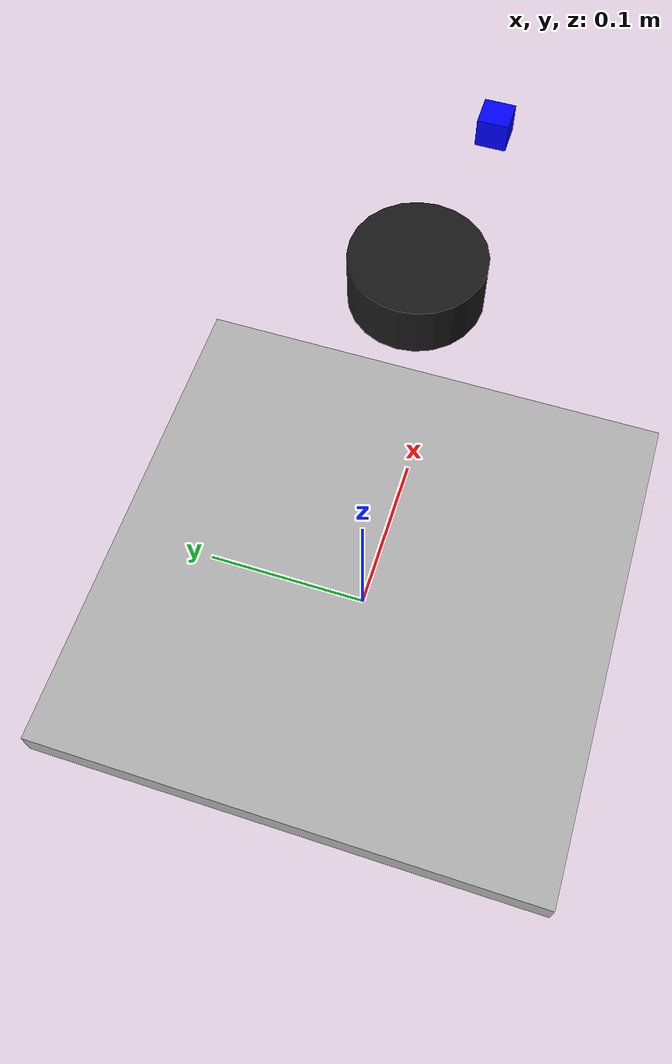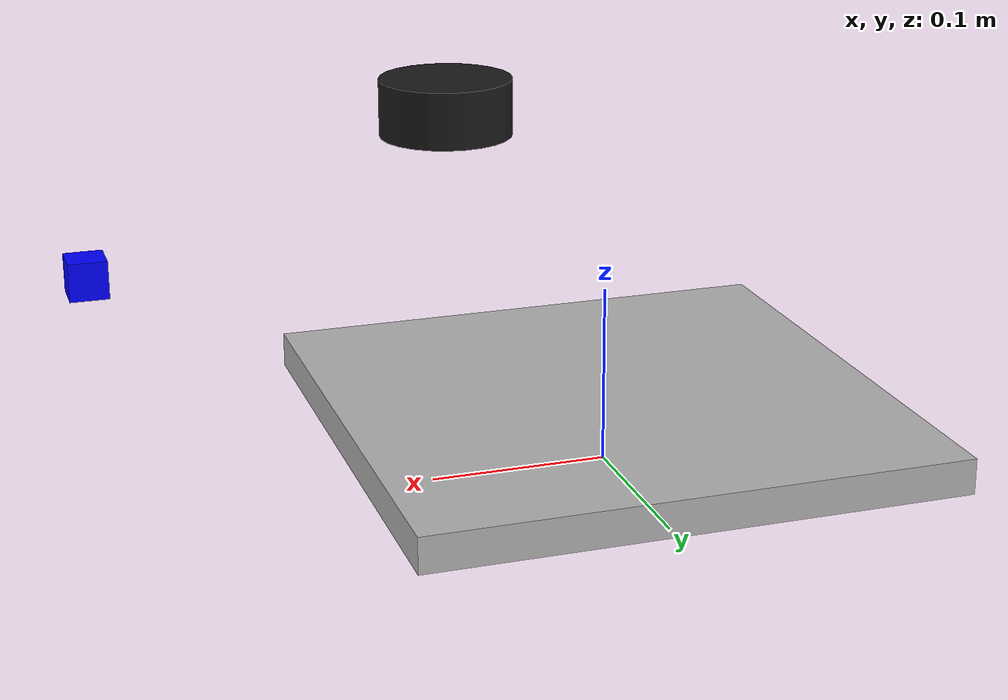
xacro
<?xml version="1.0"?>
<robot xmlns:xacro="http://www.ros.org/wiki/xacro" name="ylhb_robot">

  <!-- 1. 定义主要参考坐标系 (通常位于机器人底盘中心在地面的投影位置) -->
  <link name="base_footprint"/>

  <!-- 2. 小车主体框架：建立 base_link（设位于轮间距中心，尺寸 30x30 cm） -->
  <link name="base_link">
    <visual>
      <geometry>
        <!-- 小车大致是个长宽 0.3x0.3m 的板，假设厚度为2cm -->
        <box size="0.3 0.3 0.02"/>
      </geometry>
      <material name="gray">
        <color rgba="0.7 0.7 0.7 1"/>
      </material>
    </visual>
  </link>

  <!-- 将 base_link 与 base_footprint 链接。假设当前车轮半径为 3cm(0.03m)
       如果这里设为0，则代表轮距中心就在地板贴地上。 -->
  <joint name="footprint_to_base_joint" type="fixed">
    <parent link="base_footprint"/>
    <child link="base_link"/>
    <origin xyz="0 0 0.03" rpy="0 0 0"/>
  </joint>

  <!-- 3. 定义 IMU 的位置与物理属性 -->
  <link name="imu_link">
    <!-- 仅做在RVIZ中可视化时的示意（简单方块） -->
    <visual>
      <geometry>
        <box size="0.02 0.02 0.02"/>
      </geometry>
      <material name="blue">
        <color rgba="0 0 1 1"/>
      </material>
    </visual>
  </link>

  <!-- 4. 定义 激光雷达 的位置与物理属性 -->
  <link name="laser_link">
    <!-- RVIZ可视化的简单圆柱体示意 -->
    <visual>
      <geometry>
        <cylinder radius="0.035" length="0.03"/>
      </geometry>
      <material name="black">
        <color rgba="0.1 0.1 0.1 1"/>
      </material>
    </visual>
  </link>

  <!-- ================= 连接关节 (Joints) ================= -->

  <!-- Base 到 IMU 的静态固定连接 -->
  <joint name="base_to_imu_joint" type="fixed">
    <parent link="base_link"/>
    <child link="imu_link"/>
    <!-- 匹配 ROS 前左上标准坐标系 (X为前，Y为左，Z为上) -->
    <origin xyz="0.280 0 0.107" rpy="0 0 0"/>
  </joint>

  <joint name="base_to_laser_joint" type="fixed">
    <parent link="base_link"/>
    <child link="laser_link"/>
    <!-- 方向标定：雷达自身输出的数据 Y轴正方向 对准了 小车的车头(正前X轴方向)。
         这意味着雷达自身的 X轴 指向了小车的右侧 (-Y方向)。
         因此，雷达坐标系相对于小车主坐标系顺时针旋转了90度，即 Yaw = -1.5707963 -->
    <origin xyz="0.090 0 0.1805" rpy="0 0 -1.5707963"/>
  </joint>

</robot>
